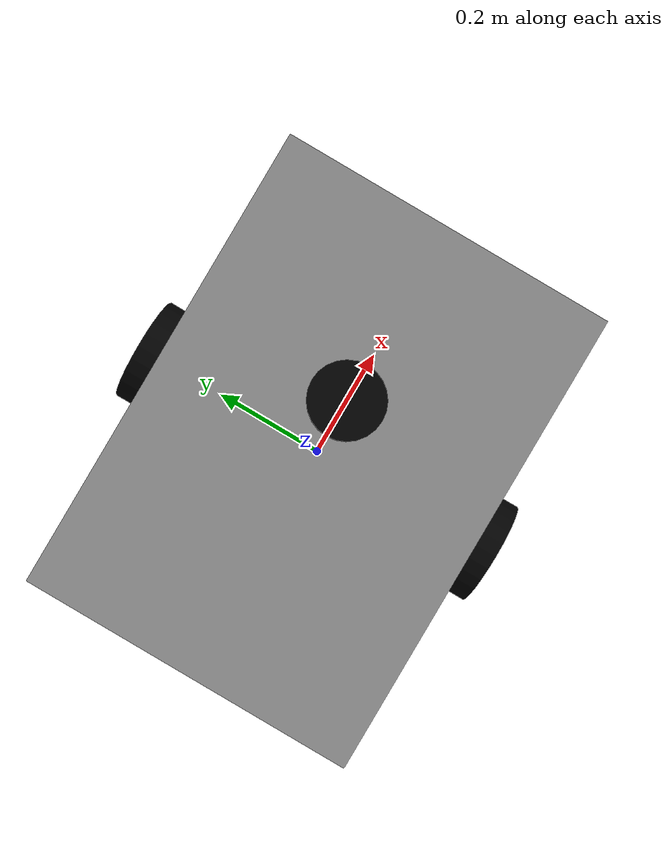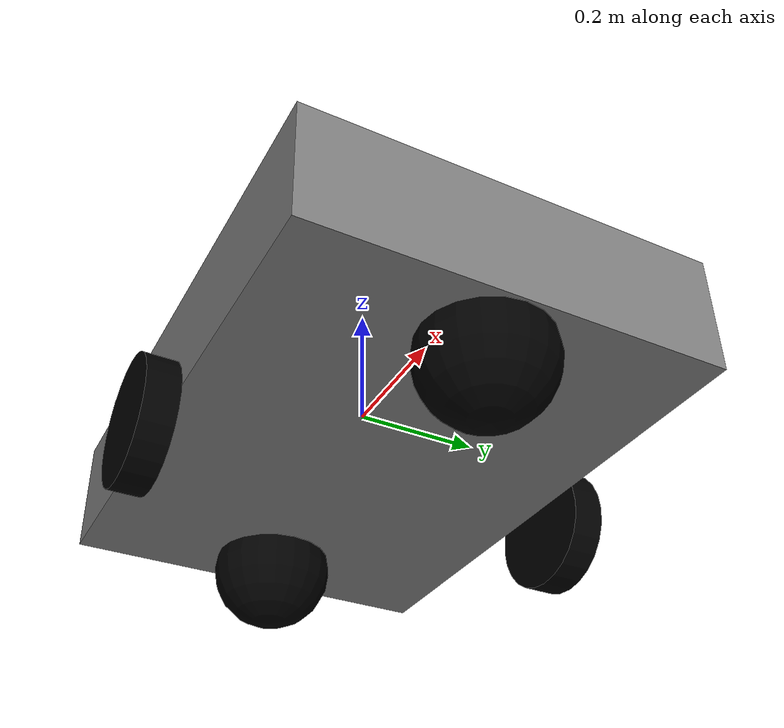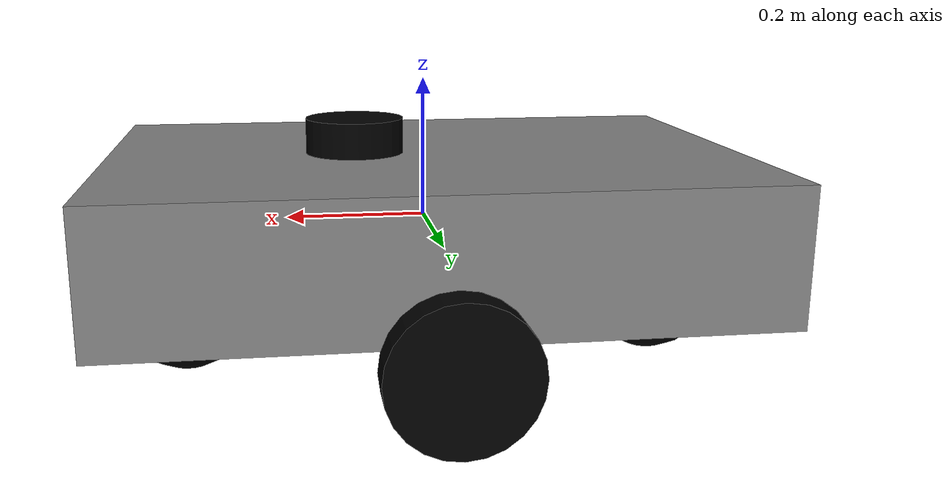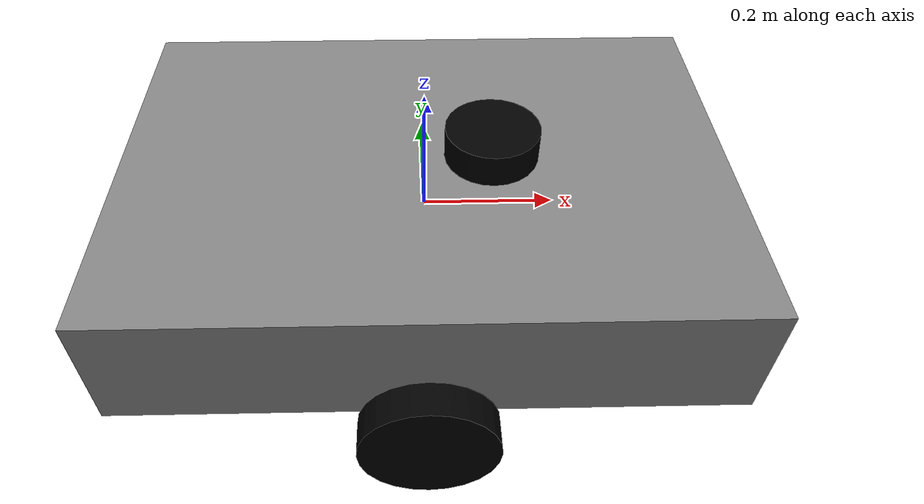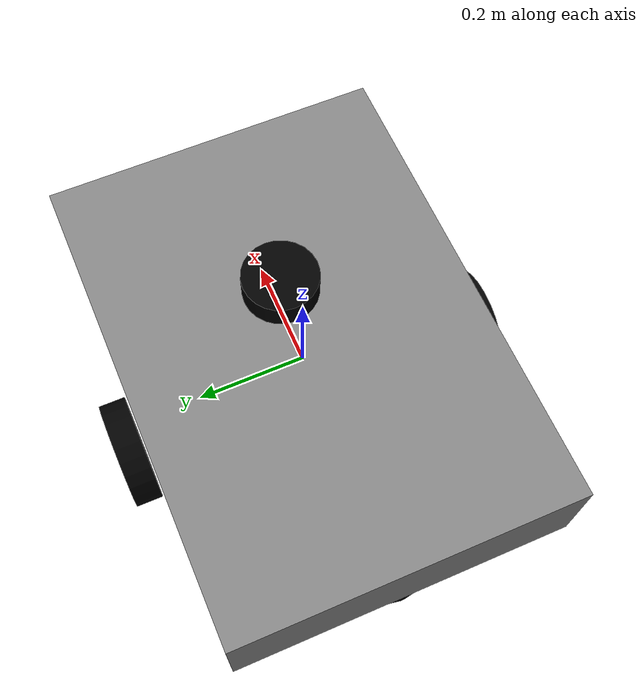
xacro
<?xml version="1.0"?>
<robot name="diff_bot" xmlns:xacro="http://www.ros.org/wiki/xacro">

    <!--................................ XACRO CONSTANTS .............................. -->

    <xacro:property name="chassis_mass" value="70"/>
    <xacro:property name="chassis_length" value="0.9"/>
    <xacro:property name="chassis_width" value="0.64"/>
    <xacro:property name="chassis_height" value="0.19"/>

    <xacro:property name="traction_wheel_mass" value="1"/>
    <xacro:property name="traction_wheel_radius" value="0.1"/>
    <xacro:property name="traction_wheel_width" value="0.05"/>
    <xacro:property name="traction_track_width" value="0.6"/>

    <xacro:property name="two_d_lidar_update_rate" value="30"/>
    <xacro:property name="two_d_lidar_sample_size" value="361"/>
    <xacro:property name="two_d_lidar_min_angle" value="0"/>
    <xacro:property name="two_d_lidar_max_angle" value="360"/>
    <xacro:property name="two_d_lidar_min_range" value="0.55"/>
    <xacro:property name="two_d_lidar_max_range" value="16"/>

    <xacro:arg name="sim_ign" default="true" />

  <xacro:if value="$(arg sim_ign)">
      <xacro:include filename="$(find diff_bot_sim)/urdf/ign.xacro"/>
  </xacro:if>

  <xacro:include filename="$(find diff_bot_sim)/urdf/macros.xacro"/>

  <link name="base_link"/>
  <link name="chassis_link">
    <visual>
      <geometry>
        <box size="${chassis_length} ${chassis_width} ${chassis_height}"/>
      </geometry>
      <material name="grey">
        <color rgba="0.5 0.5 0.5 1.0"/>
      </material>
    </visual>
    <collision>
      <geometry>
        <box size="${chassis_length} ${chassis_width} ${chassis_height}"/>
      </geometry>
    </collision>
    <inertial>
      <mass value="${chassis_mass}"/>
      <xacro:box_inertia m="${chassis_mass}" x="${chassis_length}" y="${chassis_width}" z = "${chassis_height}"/>
    </inertial>
  </link>

  <link name="left_wheel">
    <visual>
      <geometry>
        <cylinder radius="${traction_wheel_radius}" length="${traction_wheel_width}"/>
      </geometry>
      <material name="black">
        <color rgba="0.0 0.0 0.0 1.0"/>
      </material>
    </visual>
    <collision>
      <geometry>
        <cylinder radius="${traction_wheel_radius}" length="${traction_wheel_width}"/>
      </geometry>
    </collision>
    <inertial>
        <origin xyz="0 0 0" rpy="0 ${pi/2} ${pi/2}" />
        <mass value="${traction_wheel_mass}"/>
        <xacro:cylinder_inertia m="${traction_wheel_mass}" r="${traction_wheel_radius}" h="${traction_wheel_width}"/>
    </inertial>
    <mu>5.0</mu>
  </link>
  <link name="right_wheel">
    <visual>
      <geometry>
        <cylinder radius="${traction_wheel_radius}" length="${traction_wheel_width}"/>
      </geometry>
      <material name="black">
        <color rgba="0.0 0.0 0.0 1.0"/>
      </material>
    </visual>
    <collision>
      <geometry>
        <cylinder radius="${traction_wheel_radius}" length="${traction_wheel_width}"/>
      </geometry>
    </collision>
    <inertial>
        <origin xyz="0 0 0" rpy="0 ${pi/2} ${pi/2}" />
        <mass value="${traction_wheel_mass}"/>
        <xacro:cylinder_inertia m="${traction_wheel_mass}" r="${traction_wheel_radius}" h="${traction_wheel_width}"/>
    </inertial>
    <mu>5.0</mu>
  </link>
  <link name="caster_wheel_front">
    <visual>
      <geometry>
        <sphere radius="0.1"/>
      </geometry>
      <material name="black">
        <color rgba="0.0 0.0 0.0 1.0"/>
      </material>
    </visual>
    <collision>
      <geometry>
        <sphere radius="0.1"/>
      </geometry>
    </collision>
    <inertial>
        <mass value="0.5"/>
        <xacro:sphere_inertia m="0.5" r="0.1"/>
    </inertial>
    <mu>0.0</mu>
  </link>
  <link name="caster_wheel_back">
    <visual>
      <geometry>
        <sphere radius="0.1"/>
      </geometry>
      <material name="black">
        <color rgba="0.0 0.0 0.0 1.0"/>
      </material>
    </visual>
    <collision>
      <geometry>
        <sphere radius="0.1"/>
      </geometry>
    </collision>
    <inertial>
        <mass value="0.5"/>
        <xacro:sphere_inertia m="0.5" r="0.1"/>
    </inertial>
    <mu>0.0</mu>
  </link>
  <joint name="chassis_joint" type="fixed">
    <parent link="base_link"/>
    <child link="chassis_link"/>
    <origin xyz="0 0 0" rpy="0 0 0"/>
  </joint>
  <joint name="left_wheel_joint" type="continuous">
    <parent link="chassis_link"/>
    <child link="left_wheel"/>
    <origin xyz="0.0 0.35 -0.12" rpy="-1.57 0 0"/>
    <axis xyz="0 0 1"/>
  </joint>
  <joint name="right_wheel_joint" type="continuous">
    <parent link="chassis_link"/>
    <child link="right_wheel"/>
    <origin xyz="0.0 -0.35 -0.12" rpy="-1.57 0 0"/>
    <axis xyz="0 0 1"/>
  </joint>
  <joint name="caster_wheel_front_joint" type="fixed">
    <parent link="chassis_link"/>
    <child link="caster_wheel_front"/>
    <origin xyz="0.35 0 -0.12" rpy="0 0 0"/>
  </joint>
  <joint name="caster_wheel_back_joint" type="fixed">
    <parent link="chassis_link"/>
    <child link="caster_wheel_back"/>
    <origin xyz="-0.35 0 -0.12" rpy="0 0 0"/>
  </joint>

    <!--................................ LIDAR .............................. -->

  <link name="two_d_lidar">
    <visual>
      <geometry>
        <cylinder radius="0.07" length="0.05"/>
      </geometry>
      <material name="black">
        <color rgba="0.0 0.0 0.0 1.0"/>
      </material>
    </visual>
    <collision>
      <geometry>
        <cylinder radius="0.07" length="0.05"/>
      </geometry>
    </collision>
    <inertial>
        <mass value="0.5"/>
        <xacro:cylinder_inertia m="0.5" r="0.07" h="0.05"/>
    </inertial>
  </link>
  <joint name="lidar_joint" type="fixed">
    <parent link="chassis_link"/>
    <child link="two_d_lidar"/>
    <origin xyz="0.1 0 0.12" rpy="0 0 0"/>
  </joint>
</robot>

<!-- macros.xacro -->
<robot xmlns:xacro="http://www.ros.org/wiki/xacro" name="diff_bot">

    <!--................................ INERTIA MATRICES .............................. -->

    <xacro:macro name="cylinder_inertia" params="m r h">
        <inertia ixx="${m * (3 * r * r + h * h) / 12}" ixy="0" ixz="0" iyy="${m * (3 * r * r + h * h) / 12}" iyz="0" izz="${m * r * r / 2}" />
    </xacro:macro>

    <xacro:macro name="box_inertia" params="m x y z">
        <inertia ixx="${m * (y * y + z * z) / 12}" ixy="0" ixz="0" iyy="${m * (x * x + z * z) / 12}" iyz="0" izz="${m * (y * y + x * x) / 12}" />
    </xacro:macro>

    <xacro:macro name="sphere_inertia" params="m r">
        <inertia ixx="${2 * m * r * r / 5}" ixy="0" ixz="0" iyy="${2 * m * r * r / 5}" iyz="0" izz="${2 * m * r * r / 5}" />
    </xacro:macro>

</robot>
